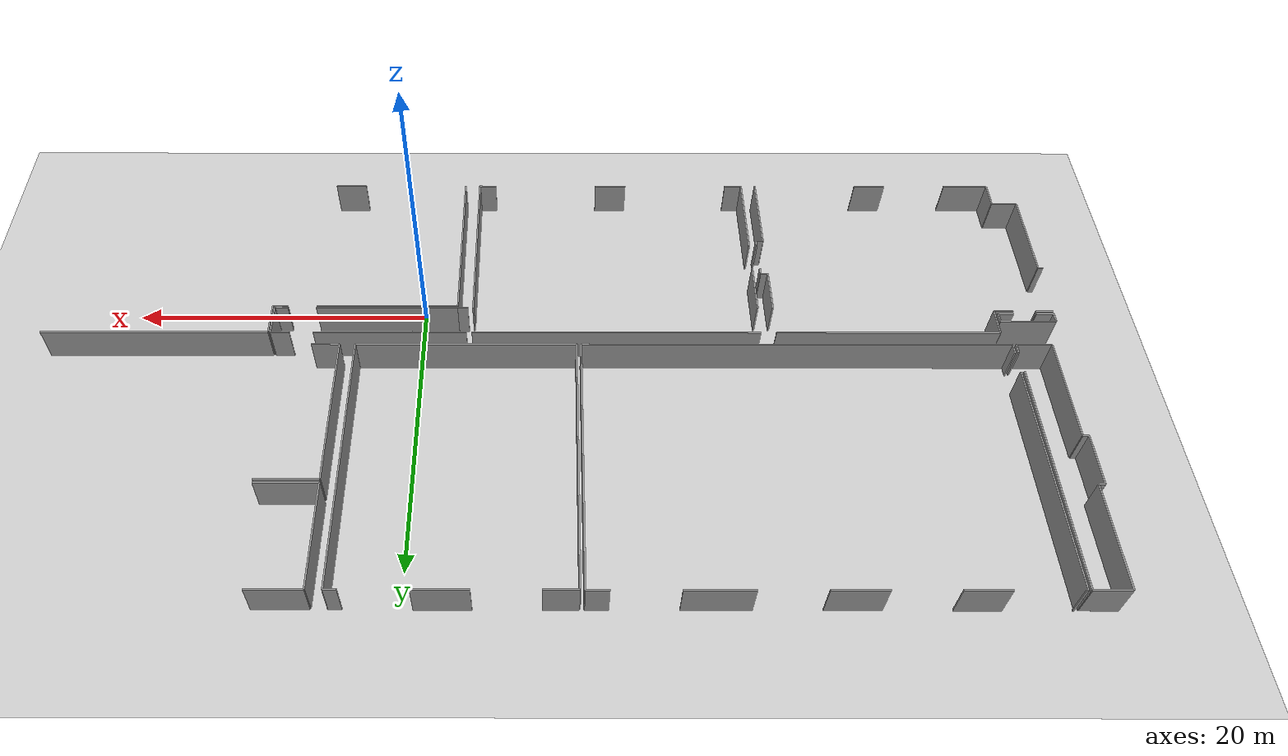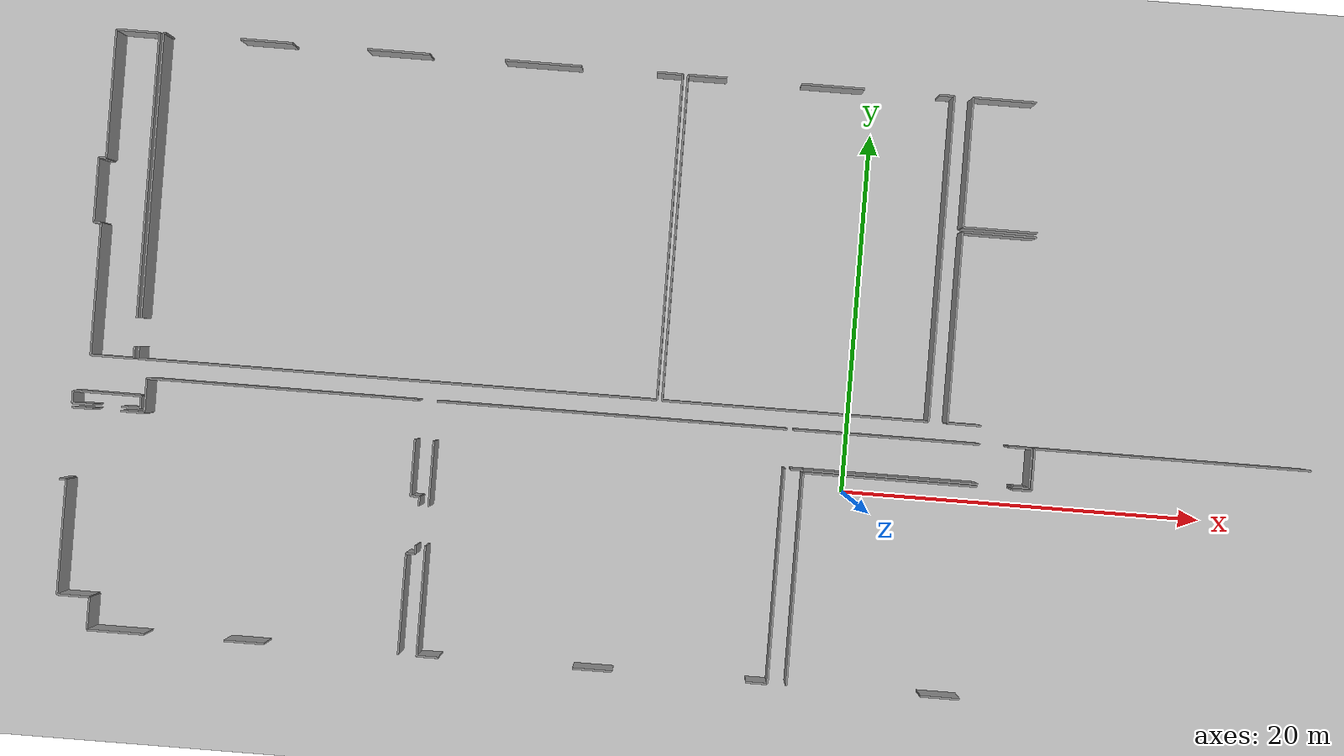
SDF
<sdf version="1.6">
 <world name="default">
  <model name="ground_plane">
   <static>1</static>
   <link name="link">
    <collision name="collision">
     <geometry><plane><normal>0 0 1</normal><size>100 100</size></plane></geometry>
     <surface><friction><ode><mu>100</mu><mu2>50</mu2></ode></friction></surface>
    </collision>
    <visual name="visual">
     <cast_shadows>0</cast_shadows>
     <geometry><plane><normal>0 0 1</normal><size>100 100</size></plane></geometry>
     <material>
      <script><uri>file://media/materials/scripts/gazebo.material</uri><name>Gazebo/Grey</name></script>
     </material>
    </visual>
   </link>
  </model>
  <model name="50010540">
   <static>1</static>
   <link name="Wall_66">
    <collision name="Wall_66_Collision">
     <geometry><box><size>6.36275238803 0.1 2.5</size></box></geometry>
     <pose>3.18137619402 0 1.25 0 0 0</pose>
    </collision>
    <visual name="Wall_66_Visual">
     <pose>3.18137619402 0 1.25 0 0 0</pose>
     <geometry><box><size>6.36275238803 0.1 2.5</size></box></geometry>
     <material>
      <script><uri>file://media/materials/scripts/gazebo.material</uri><name>Gazebo/Grey</name></script>
      <ambient>1 1 1 1</ambient>
     </material>
    </visual>
    <pose>19.6804514862 -31.7461406954 0 0 0 1.57079632679</pose>
   </link>
   <link name="Wall_67">
    <collision name="Wall_67_Collision">
     <geometry><box><size>0.357680794677 0.1 2.5</size></box></geometry>
     <pose>0.178840397338 0 1.25 0 0 0</pose>
    </collision>
    <visual name="Wall_67_Visual">
     <pose>0.178840397338 0 1.25 0 0 0</pose>
     <geometry><box><size>0.357680794677 0.1 2.5</size></box></geometry>
     <material>
      <script><uri>file://media/materials/scripts/gazebo.material</uri><name>Gazebo/Grey</name></script>
      <ambient>1 1 1 1</ambient>
     </material>
    </visual>
    <pose>19.6804514862 -25.3833883074 0 0 0 3.14159265359</pose>
   </link>
   <link name="Wall_71">
    <collision name="Wall_71_Collision">
     <geometry><box><size>1.1626532441 0.1 2.5</size></box></geometry>
     <pose>0.581326622052 0 1.25 0 0 0</pose>
    </collision>
    <visual name="Wall_71_Visual">
     <pose>0.581326622052 0 1.25 0 0 0</pose>
     <geometry><box><size>1.1626532441 0.1 2.5</size></box></geometry>
     <material>
      <script><uri>file://media/materials/scripts/gazebo.material</uri><name>Gazebo/Grey</name></script>
      <ambient>1 1 1 1</ambient>
     </material>
    </visual>
    <pose>19.6691389095 -21.3969125563 0 0 0 0.0</pose>
   </link>
   <link name="Wall_72">
    <collision name="Wall_72_Collision">
     <geometry><box><size>1.29103192307 0.1 2.5</size></box></geometry>
     <pose>0.645515961537 0 1.25 0 0 0</pose>
    </collision>
    <visual name="Wall_72_Visual">
     <pose>0.645515961537 0 1.25 0 0 0</pose>
     <geometry><box><size>1.29103192307 0.1 2.5</size></box></geometry>
     <material>
      <script><uri>file://media/materials/scripts/gazebo.material</uri><name>Gazebo/Grey</name></script>
      <ambient>1 1 1 1</ambient>
     </material>
    </visual>
    <pose>22.3846657388 -21.3969125563 0 0 0 0.0</pose>
   </link>
   <link name="Wall_73">
    <collision name="Wall_73_Collision">
     <geometry><box><size>1.90203817041 0.1 2.5</size></box></geometry>
     <pose>0.951019085207 0 1.25 0 0 0</pose>
    </collision>
    <visual name="Wall_73_Visual">
     <pose>0.951019085207 0 1.25 0 0 0</pose>
     <geometry><box><size>1.90203817041 0.1 2.5</size></box></geometry>
     <material>
      <script><uri>file://media/materials/scripts/gazebo.material</uri><name>Gazebo/Grey</name></script>
      <ambient>1 1 1 1</ambient>
     </material>
    </visual>
    <pose>23.6756976619 -21.3969125563 0 0 0 1.57079632679</pose>
   </link>
   <link name="Wall_74">
    <collision name="Wall_74_Collision">
     <geometry><box><size>14.9886556464 0.1 2.5</size></box></geometry>
     <pose>7.49432782322 0 1.25 0 0 0</pose>
    </collision>
    <visual name="Wall_74_Visual">
     <pose>7.49432782322 0 1.25 0 0 0</pose>
     <geometry><box><size>14.9886556464 0.1 2.5</size></box></geometry>
     <material>
      <script><uri>file://media/materials/scripts/gazebo.material</uri><name>Gazebo/Grey</name></script>
      <ambient>1 1 1 1</ambient>
     </material>
    </visual>
    <pose>23.6756976619 -19.4948743859 0 0 0 0.0</pose>
   </link>
   <link name="Wall_75">
    <collision name="Wall_75_Collision">
     <geometry><box><size>3.12595727913 0.1 2.5</size></box></geometry>
     <pose>1.56297863957 0 1.25 0 0 0</pose>
    </collision>
    <visual name="Wall_75_Visual">
     <pose>1.56297863957 0 1.25 0 0 0</pose>
     <geometry><box><size>3.12595727913 0.1 2.5</size></box></geometry>
     <material>
      <script><uri>file://media/materials/scripts/gazebo.material</uri><name>Gazebo/Grey</name></script>
      <ambient>1 1 1 1</ambient>
     </material>
    </visual>
    <pose>38.6643533083 -21.6699396874 0 0 0 -1.57079632679</pose>
   </link>
   <link name="Wall_76">
    <collision name="Wall_76_Collision">
     <geometry><box><size>0.493177499412 0.1 2.5</size></box></geometry>
     <pose>0.246588749706 0 1.25 0 0 0</pose>
    </collision>
    <visual name="Wall_76_Visual">
     <pose>0.246588749706 0 1.25 0 0 0</pose>
     <geometry><box><size>0.493177499412 0.1 2.5</size></box></geometry>
     <material>
      <script><uri>file://media/materials/scripts/gazebo.material</uri><name>Gazebo/Grey</name></script>
      <ambient>1 1 1 1</ambient>
     </material>
    </visual>
    <pose>38.6643533083 -24.7958969666 0 0 0 0.0</pose>
   </link>
   <link name="Wall_77">
    <collision name="Wall_77_Collision">
     <geometry><box><size>0.499532879559 0.1 2.5</size></box></geometry>
     <pose>0.24976643978 0 1.25 0 0 0</pose>
    </collision>
    <visual name="Wall_77_Visual">
     <pose>0.24976643978 0 1.25 0 0 0</pose>
     <geometry><box><size>0.499532879559 0.1 2.5</size></box></geometry>
     <material>
      <script><uri>file://media/materials/scripts/gazebo.material</uri><name>Gazebo/Grey</name></script>
      <ambient>1 1 1 1</ambient>
     </material>
    </visual>
    <pose>39.1575308077 -24.7958969666 0 0 0 -1.57079632679</pose>
   </link>
   <link name="Wall_78">
    <collision name="Wall_78_Collision">
     <geometry><box><size>0.468137301633 0.1 2.5</size></box></geometry>
     <pose>0.234068650816 0 1.25 0 0 0</pose>
    </collision>
    <visual name="Wall_78_Visual">
     <pose>0.234068650816 0 1.25 0 0 0</pose>
     <geometry><box><size>0.468137301633 0.1 2.5</size></box></geometry>
     <material>
      <script><uri>file://media/materials/scripts/gazebo.material</uri><name>Gazebo/Grey</name></script>
      <ambient>1 1 1 1</ambient>
     </material>
    </visual>
    <pose>39.1575308077 -27.4947726998 0 0 0 -1.57079632679</pose>
   </link>
   <link name="Wall_79">
    <collision name="Wall_79_Collision">
     <geometry><box><size>0.490126916942 0.1 2.5</size></box></geometry>
     <pose>0.245063458471 0 1.25 0 0 0</pose>
    </collision>
    <visual name="Wall_79_Visual">
     <pose>0.245063458471 0 1.25 0 0 0</pose>
     <geometry><box><size>0.490126916942 0.1 2.5</size></box></geometry>
     <material>
      <script><uri>file://media/materials/scripts/gazebo.material</uri><name>Gazebo/Grey</name></script>
      <ambient>1 1 1 1</ambient>
     </material>
    </visual>
    <pose>39.1575308077 -27.9629100015 0 0 0 3.14159265359</pose>
   </link>
   <link name="Wall_80">
    <collision name="Wall_80_Collision">
     <geometry><box><size>5.59705618792 0.1 2.5</size></box></geometry>
     <pose>2.79852809396 0 1.25 0 0 0</pose>
    </collision>
    <visual name="Wall_80_Visual">
     <pose>2.79852809396 0 1.25 0 0 0</pose>
     <geometry><box><size>5.59705618792 0.1 2.5</size></box></geometry>
     <material>
      <script><uri>file://media/materials/scripts/gazebo.material</uri><name>Gazebo/Grey</name></script>
      <ambient>1 1 1 1</ambient>
     </material>
    </visual>
    <pose>38.6674038908 -27.9629100015 0 0 0 -1.57079632679</pose>
   </link>
   <link name="Wall_81">
    <collision name="Wall_81_Collision">
     <geometry><box><size>2.21459576605 0.1 2.5</size></box></geometry>
     <pose>1.10729788302 0 1.25 0 0 0</pose>
    </collision>
    <visual name="Wall_81_Visual">
     <pose>1.10729788302 0 1.25 0 0 0</pose>
     <geometry><box><size>2.21459576605 0.1 2.5</size></box></geometry>
     <material>
      <script><uri>file://media/materials/scripts/gazebo.material</uri><name>Gazebo/Grey</name></script>
      <ambient>1 1 1 1</ambient>
     </material>
    </visual>
    <pose>31.280164223 -33.5599661894 0 0 0 3.14159265359</pose>
   </link>
   <link name="Wall_82">
    <collision name="Wall_82_Collision">
     <geometry><box><size>3.16205583837 0.1 2.5</size></box></geometry>
     <pose>1.58102791918 0 1.25 0 0 0</pose>
    </collision>
    <visual name="Wall_82_Visual">
     <pose>1.58102791918 0 1.25 0 0 0</pose>
     <geometry><box><size>3.16205583837 0.1 2.5</size></box></geometry>
     <material>
      <script><uri>file://media/materials/scripts/gazebo.material</uri><name>Gazebo/Grey</name></script>
      <ambient>1 1 1 1</ambient>
     </material>
    </visual>
    <pose>24.6381564313 -33.5599661894 0 0 0 3.14159265359</pose>
   </link>
   <link name="Wall_83">
    <collision name="Wall_83_Collision">
     <geometry><box><size>1.80569060738 0.1 2.5</size></box></geometry>
     <pose>0.902845303692 0 1.25 0 0 0</pose>
    </collision>
    <visual name="Wall_83_Visual">
     <pose>0.902845303692 0 1.25 0 0 0</pose>
     <geometry><box><size>1.80569060738 0.1 2.5</size></box></geometry>
     <material>
      <script><uri>file://media/materials/scripts/gazebo.material</uri><name>Gazebo/Grey</name></script>
      <ambient>1 1 1 1</ambient>
     </material>
    </visual>
    <pose>21.476100593 -33.5599661894 0 0 0 1.57079632679</pose>
   </link>
   <link name="Wall_84">
    <collision name="Wall_84_Collision">
     <geometry><box><size>1.79566753353 0.1 2.5</size></box></geometry>
     <pose>0.897833766763 0 1.25 0 0 0</pose>
    </collision>
    <visual name="Wall_84_Visual">
     <pose>0.897833766763 0 1.25 0 0 0</pose>
     <geometry><box><size>1.79566753353 0.1 2.5</size></box></geometry>
     <material>
      <script><uri>file://media/materials/scripts/gazebo.material</uri><name>Gazebo/Grey</name></script>
      <ambient>1 1 1 1</ambient>
     </material>
    </visual>
    <pose>21.476100593 -31.754275582 0 0 0 3.13706235259</pose>
   </link>
   <link name="Wall_85">
    <collision name="Wall_85_Collision">
     <geometry><box><size>0.676847985662 0.1 2.5</size></box></geometry>
     <pose>0.338423992831 0 1.25 0 0 0</pose>
    </collision>
    <visual name="Wall_85_Visual">
     <pose>0.338423992831 0 1.25 0 0 0</pose>
     <geometry><box><size>0.676847985662 0.1 2.5</size></box></geometry>
     <material>
      <script><uri>file://media/materials/scripts/gazebo.material</uri><name>Gazebo/Grey</name></script>
      <ambient>1 1 1 1</ambient>
     </material>
    </visual>
    <pose>19.6804514862 -21.1688815166 0 0 0 1.57079632679</pose>
   </link>
   <link name="Wall_86">
    <collision name="Wall_86_Collision">
     <geometry><box><size>3.75908024939 0.1 2.5</size></box></geometry>
     <pose>1.87954012469 0 1.25 0 0 0</pose>
    </collision>
    <visual name="Wall_86_Visual">
     <pose>1.87954012469 0 1.25 0 0 0</pose>
     <geometry><box><size>3.75908024939 0.1 2.5</size></box></geometry>
     <material>
      <script><uri>file://media/materials/scripts/gazebo.material</uri><name>Gazebo/Grey</name></script>
      <ambient>1 1 1 1</ambient>
     </material>
    </visual>
    <pose>19.6804514862 -20.492033531 0 0 0 0.0</pose>
   </link>
   <link name="Wall_87">
    <collision name="Wall_87_Collision">
     <geometry><box><size>0.67201789675 0.1 2.5</size></box></geometry>
     <pose>0.336008948375 0 1.25 0 0 0</pose>
    </collision>
    <visual name="Wall_87_Visual">
     <pose>0.336008948375 0 1.25 0 0 0</pose>
     <geometry><box><size>0.67201789675 0.1 2.5</size></box></geometry>
     <material>
      <script><uri>file://media/materials/scripts/gazebo.material</uri><name>Gazebo/Grey</name></script>
      <ambient>1 1 1 1</ambient>
     </material>
    </visual>
    <pose>23.4395317356 -20.492033531 0 0 0 -1.57079632679</pose>
   </link>
   <link name="Wall_88">
    <collision name="Wall_88_Collision">
     <geometry><box><size>1.04482449618 0.1 2.5</size></box></geometry>
     <pose>0.522412248089 0 1.25 0 0 0</pose>
    </collision>
    <visual name="Wall_88_Visual">
     <pose>0.522412248089 0 1.25 0 0 0</pose>
     <geometry><box><size>1.04482449618 0.1 2.5</size></box></geometry>
     <material>
      <script><uri>file://media/materials/scripts/gazebo.material</uri><name>Gazebo/Grey</name></script>
      <ambient>1 1 1 1</ambient>
     </material>
    </visual>
    <pose>23.4395317356 -21.1640514277 0 0 0 3.14159265359</pose>
   </link>
   <link name="Wall_89">
    <collision name="Wall_89_Collision">
     <geometry><box><size>1.16228195753 0.1 2.5</size></box></geometry>
     <pose>0.581140978763 0 1.25 0 0 0</pose>
    </collision>
    <visual name="Wall_89_Visual">
     <pose>0.581140978763 0 1.25 0 0 0</pose>
     <geometry><box><size>1.16228195753 0.1 2.5</size></box></geometry>
     <material>
      <script><uri>file://media/materials/scripts/gazebo.material</uri><name>Gazebo/Grey</name></script>
      <ambient>1 1 1 1</ambient>
     </material>
    </visual>
    <pose>20.8427234075 -21.1640514277 0 0 0 -3.13743694698</pose>
   </link>
   <link name="Wall_90">
    <collision name="Wall_90_Collision">
     <geometry><box><size>6.07879400306 0.1 2.5</size></box></geometry>
     <pose>3.03939700153 0 1.25 0 0 0</pose>
    </collision>
    <visual name="Wall_90_Visual">
     <pose>3.03939700153 0 1.25 0 0 0</pose>
     <geometry><box><size>6.07879400306 0.1 2.5</size></box></geometry>
     <material>
      <script><uri>file://media/materials/scripts/gazebo.material</uri><name>Gazebo/Grey</name></script>
      <ambient>1 1 1 1</ambient>
     </material>
    </visual>
    <pose>39.6977381202 -33.5569156069 0 0 0 1.57079632679</pose>
   </link>
   <link name="Wall_91">
    <collision name="Wall_91_Collision">
     <geometry><box><size>3.62332932944 0.1 2.5</size></box></geometry>
     <pose>1.81166466472 0 1.25 0 0 0</pose>
    </collision>
    <visual name="Wall_91_Visual">
     <pose>1.81166466472 0 1.25 0 0 0</pose>
     <geometry><box><size>3.62332932944 0.1 2.5</size></box></geometry>
     <material>
      <script><uri>file://media/materials/scripts/gazebo.material</uri><name>Gazebo/Grey</name></script>
      <ambient>1 1 1 1</ambient>
     </material>
    </visual>
    <pose>39.6977381202 -25.2918708333 0 0 0 1.57079632679</pose>
   </link>
   <link name="Wall_92">
    <collision name="Wall_92_Collision">
     <geometry><box><size>19.3772998532 0.1 2.5</size></box></geometry>
     <pose>9.6886499266 0 1.25 0 0 0</pose>
    </collision>
    <visual name="Wall_92_Visual">
     <pose>9.6886499266 0 1.25 0 0 0</pose>
     <geometry><box><size>19.3772998532 0.1 2.5</size></box></geometry>
     <material>
      <script><uri>file://media/materials/scripts/gazebo.material</uri><name>Gazebo/Grey</name></script>
      <ambient>1 1 1 1</ambient>
     </material>
    </visual>
    <pose>39.6977381202 -19.4876292525 0 0 0 0.0</pose>
   </link>
   <link name="Wall_93">
    <collision name="Wall_93_Collision">
     <geometry><box><size>11.9026101546 0.1 2.5</size></box></geometry>
     <pose>5.95130507731 0 1.25 0 0 0</pose>
    </collision>
    <visual name="Wall_93_Visual">
     <pose>5.95130507731 0 1.25 0 0 0</pose>
     <geometry><box><size>11.9026101546 0.1 2.5</size></box></geometry>
     <material>
      <script><uri>file://media/materials/scripts/gazebo.material</uri><name>Gazebo/Grey</name></script>
      <ambient>1 1 1 1</ambient>
     </material>
    </visual>
    <pose>59.0750379734 -21.6529072686 0 0 0 -1.57079632679</pose>
   </link>
   <link name="Wall_94">
    <collision name="Wall_94_Collision">
     <geometry><box><size>1.19163377757 0.1 2.5</size></box></geometry>
     <pose>0.595816888787 0 1.25 0 0 0</pose>
    </collision>
    <visual name="Wall_94_Visual">
     <pose>0.595816888787 0 1.25 0 0 0</pose>
     <geometry><box><size>1.19163377757 0.1 2.5</size></box></geometry>
     <material>
      <script><uri>file://media/materials/scripts/gazebo.material</uri><name>Gazebo/Grey</name></script>
      <ambient>1 1 1 1</ambient>
     </material>
    </visual>
    <pose>59.0750379734 -33.5555174233 0 0 0 3.14159265359</pose>
   </link>
   <link name="Wall_95">
    <collision name="Wall_95_Collision">
     <geometry><box><size>2.20455426541 0.1 2.5</size></box></geometry>
     <pose>1.10227713271 0 1.25 0 0 0</pose>
    </collision>
    <visual name="Wall_95_Visual">
     <pose>1.10227713271 0 1.25 0 0 0</pose>
     <geometry><box><size>2.20455426541 0.1 2.5</size></box></geometry>
     <material>
      <script><uri>file://media/materials/scripts/gazebo.material</uri><name>Gazebo/Grey</name></script>
      <ambient>1 1 1 1</ambient>
     </material>
    </visual>
    <pose>50.5023928006 -33.5555174233 0 0 0 3.14159265359</pose>
   </link>
   <link name="Wall_96">
    <collision name="Wall_96_Collision">
     <geometry><box><size>1.20498088707 0.1 2.5</size></box></geometry>
     <pose>0.602490443533 0 1.25 0 0 0</pose>
    </collision>
    <visual name="Wall_96_Visual">
     <pose>0.602490443533 0 1.25 0 0 0</pose>
     <geometry><box><size>1.20498088707 0.1 2.5</size></box></geometry>
     <material>
      <script><uri>file://media/materials/scripts/gazebo.material</uri><name>Gazebo/Grey</name></script>
      <ambient>1 1 1 1</ambient>
     </material>
    </visual>
    <pose>40.9027181961 -33.5555174233 0 0 0 -3.14043231656</pose>
   </link>
   <link name="Wall_97">
    <collision name="Wall_97_Collision">
     <geometry><box><size>0.702396613853 0.1 2.5</size></box></geometry>
     <pose>0.351198306927 0 1.25 0 0 0</pose>
    </collision>
    <visual name="Wall_97_Visual">
     <pose>0.351198306927 0 1.25 0 0 0</pose>
     <geometry><box><size>0.702396613853 0.1 2.5</size></box></geometry>
     <material>
      <script><uri>file://media/materials/scripts/gazebo.material</uri><name>Gazebo/Grey</name></script>
      <ambient>1 1 1 1</ambient>
     </material>
    </visual>
    <pose>60.1349882743 -21.6679059658 0 0 0 3.14159265359</pose>
   </link>
   <link name="Wall_98">
    <collision name="Wall_98_Collision">
     <geometry><box><size>10.2783020966 0.1 2.5</size></box></geometry>
     <pose>5.13915104832 0 1.25 0 0 0</pose>
    </collision>
    <visual name="Wall_98_Visual">
     <pose>5.13915104832 0 1.25 0 0 0</pose>
     <geometry><box><size>10.2783020966 0.1 2.5</size></box></geometry>
     <material>
      <script><uri>file://media/materials/scripts/gazebo.material</uri><name>Gazebo/Grey</name></script>
      <ambient>1 1 1 1</ambient>
     </material>
    </visual>
    <pose>59.4325916605 -19.4844515625 0 0 0 0.0</pose>
   </link>
   <link name="Wall_99">
    <collision name="Wall_99_Collision">
     <geometry><box><size>1.28454943532 0.1 2.5</size></box></geometry>
     <pose>0.642274717662 0 1.25 0 0 0</pose>
    </collision>
    <visual name="Wall_99_Visual">
     <pose>0.642274717662 0 1.25 0 0 0</pose>
     <geometry><box><size>1.28454943532 0.1 2.5</size></box></geometry>
     <material>
      <script><uri>file://media/materials/scripts/gazebo.material</uri><name>Gazebo/Grey</name></script>
      <ambient>1 1 1 1</ambient>
     </material>
    </visual>
    <pose>71.3002472243 -19.4844515625 0 0 0 0.0</pose>
   </link>
   <link name="Wall_100">
    <collision name="Wall_100_Collision">
     <geometry><box><size>2.18459837175 0.1 2.5</size></box></geometry>
     <pose>1.09229918588 0 1.25 0 0 0</pose>
    </collision>
    <visual name="Wall_100_Visual">
     <pose>1.09229918588 0 1.25 0 0 0</pose>
     <geometry><box><size>2.18459837175 0.1 2.5</size></box></geometry>
     <material>
      <script><uri>file://media/materials/scripts/gazebo.material</uri><name>Gazebo/Grey</name></script>
      <ambient>1 1 1 1</ambient>
     </material>
    </visual>
    <pose>72.5847966596 -19.4844515625 0 0 0 -1.57079632679</pose>
   </link>
   <link name="Wall_101">
    <collision name="Wall_101_Collision">
     <geometry><box><size>0.903735056912 0.1 2.5</size></box></geometry>
     <pose>0.451867528456 0 1.25 0 0 0</pose>
    </collision>
    <visual name="Wall_101_Visual">
     <pose>0.451867528456 0 1.25 0 0 0</pose>
     <geometry><box><size>0.903735056912 0.1 2.5</size></box></geometry>
     <material>
      <script><uri>file://media/materials/scripts/gazebo.material</uri><name>Gazebo/Grey</name></script>
      <ambient>1 1 1 1</ambient>
     </material>
    </visual>
    <pose>72.5847966596 -21.6690499342 0 0 0 3.14159265359</pose>
   </link>
   <link name="Wall_102">
    <collision name="Wall_102_Collision">
     <geometry><box><size>9.62852809836 0.1 2.5</size></box></geometry>
     <pose>4.81426404918 0 1.25 0 0 0</pose>
    </collision>
    <visual name="Wall_102_Visual">
     <pose>4.81426404918 0 1.25 0 0 0</pose>
     <geometry><box><size>9.62852809836 0.1 2.5</size></box></geometry>
     <material>
      <script><uri>file://media/materials/scripts/gazebo.material</uri><name>Gazebo/Grey</name></script>
      <ambient>1 1 1 1</ambient>
     </material>
    </visual>
    <pose>69.7635163047 -21.6690499342 0 0 0 3.14147384328</pose>
   </link>
   <link name="Wall_103">
    <collision name="Wall_103_Collision">
     <geometry><box><size>7.31313593523 0.1 2.5</size></box></geometry>
     <pose>3.65656796761 0 1.25 0 0 0</pose>
    </collision>
    <visual name="Wall_103_Visual">
     <pose>3.65656796761 0 1.25 0 0 0</pose>
     <geometry><box><size>7.31313593523 0.1 2.5</size></box></geometry>
     <material>
      <script><uri>file://media/materials/scripts/gazebo.material</uri><name>Gazebo/Grey</name></script>
      <ambient>1 1 1 1</ambient>
     </material>
    </visual>
    <pose>20.4790685555 -18.4579305611 0 0 0 1.57079632679</pose>
   </link>
   <link name="Wall_104">
    <collision name="Wall_104_Collision">
     <geometry><box><size>0.405219038177 0.1 2.5</size></box></geometry>
     <pose>0.202609519088 0 1.25 0 0 0</pose>
    </collision>
    <visual name="Wall_104_Visual">
     <pose>0.202609519088 0 1.25 0 0 0</pose>
     <geometry><box><size>0.405219038177 0.1 2.5</size></box></geometry>
     <material>
      <script><uri>file://media/materials/scripts/gazebo.material</uri><name>Gazebo/Grey</name></script>
      <ambient>1 1 1 1</ambient>
     </material>
    </visual>
    <pose>20.4790685555 -11.1447946259 0 0 0 3.14159265359</pose>
   </link>
   <link name="Wall_105">
    <collision name="Wall_105_Collision">
     <geometry><box><size>3.57502844033 0.1 2.5</size></box></geometry>
     <pose>1.78751422016 0 1.25 0 0 0</pose>
    </collision>
    <visual name="Wall_105_Visual">
     <pose>1.78751422016 0 1.25 0 0 0</pose>
     <geometry><box><size>3.57502844033 0.1 2.5</size></box></geometry>
     <material>
      <script><uri>file://media/materials/scripts/gazebo.material</uri><name>Gazebo/Grey</name></script>
      <ambient>1 1 1 1</ambient>
     </material>
    </visual>
    <pose>20.0738495173 -11.1447946259 0 0 0 1.57079632679</pose>
   </link>
   <link name="Wall_106">
    <collision name="Wall_106_Collision">
     <geometry><box><size>0.405473253383 0.1 2.5</size></box></geometry>
     <pose>0.202736626691 0 1.25 0 0 0</pose>
    </collision>
    <visual name="Wall_106_Visual">
     <pose>0.202736626691 0 1.25 0 0 0</pose>
     <geometry><box><size>0.405473253383 0.1 2.5</size></box></geometry>
     <material>
      <script><uri>file://media/materials/scripts/gazebo.material</uri><name>Gazebo/Grey</name></script>
      <ambient>1 1 1 1</ambient>
     </material>
    </visual>
    <pose>20.0738495173 -7.56976618556 0 0 0 0.0</pose>
   </link>
   <link name="Wall_107">
    <collision name="Wall_107_Collision">
     <geometry><box><size>7.10201020674 0.1 2.5</size></box></geometry>
     <pose>3.55100510337 0 1.25 0 0 0</pose>
    </collision>
    <visual name="Wall_107_Visual">
     <pose>3.55100510337 0 1.25 0 0 0</pose>
     <geometry><box><size>7.10201020674 0.1 2.5</size></box></geometry>
     <material>
      <script><uri>file://media/materials/scripts/gazebo.material</uri><name>Gazebo/Grey</name></script>
      <ambient>1 1 1 1</ambient>
     </material>
    </visual>
    <pose>20.4793227707 -7.56976618556 0 0 0 1.57079632679</pose>
   </link>
   <link name="Wall_108">
    <collision name="Wall_108_Collision">
     <geometry><box><size>2.37970854227 0.1 2.5</size></box></geometry>
     <pose>1.18985427113 0 1.25 0 0 0</pose>
    </collision>
    <visual name="Wall_108_Visual">
     <pose>1.18985427113 0 1.25 0 0 0</pose>
     <geometry><box><size>2.37970854227 0.1 2.5</size></box></geometry>
     <material>
      <script><uri>file://media/materials/scripts/gazebo.material</uri><name>Gazebo/Grey</name></script>
      <ambient>1 1 1 1</ambient>
     </material>
    </visual>
    <pose>20.4793227707 -0.467755978824 0 0 0 0.0</pose>
   </link>
   <link name="Wall_109">
    <collision name="Wall_109_Collision">
     <geometry><box><size>15.7346501681 0.1 2.5</size></box></geometry>
     <pose>7.86732508405 0 1.25 0 0 0</pose>
    </collision>
    <visual name="Wall_109_Visual">
     <pose>7.86732508405 0 1.25 0 0 0</pose>
     <geometry><box><size>15.7346501681 0.1 2.5</size></box></geometry>
     <material>
      <script><uri>file://media/materials/scripts/gazebo.material</uri><name>Gazebo/Grey</name></script>
      <ambient>1 1 1 1</ambient>
     </material>
    </visual>
    <pose>22.859031313 -0.467755978824 0 0 0 -1.57079632679</pose>
   </link>
   <link name="Wall_110">
    <collision name="Wall_110_Collision">
     <geometry><box><size>0.679008814912 0.1 2.5</size></box></geometry>
     <pose>0.339504407456 0 1.25 0 0 0</pose>
    </collision>
    <visual name="Wall_110_Visual">
     <pose>0.339504407456 0 1.25 0 0 0</pose>
     <geometry><box><size>0.679008814912 0.1 2.5</size></box></geometry>
     <material>
      <script><uri>file://media/materials/scripts/gazebo.material</uri><name>Gazebo/Grey</name></script>
      <ambient>1 1 1 1</ambient>
     </material>
    </visual>
    <pose>22.859031313 -17.7777777778 0 0 0 -1.57079632679</pose>
   </link>
   <link name="Wall_111">
    <collision name="Wall_111_Collision">
     <geometry><box><size>2.37996303241 0.1 2.5</size></box></geometry>
     <pose>1.1899815162 0 1.25 0 0 0</pose>
    </collision>
    <visual name="Wall_111_Visual">
     <pose>1.1899815162 0 1.25 0 0 0</pose>
     <geometry><box><size>2.37996303241 0.1 2.5</size></box></geometry>
     <material>
      <script><uri>file://media/materials/scripts/gazebo.material</uri><name>Gazebo/Grey</name></script>
      <ambient>1 1 1 1</ambient>
     </material>
    </visual>
    <pose>22.859031313 -18.4567865927 0 0 0 -3.1411119871</pose>
   </link>
   <link name="Wall_112">
    <collision name="Wall_112_Collision">
     <geometry><box><size>0.125709419309 0.1 2.5</size></box></geometry>
     <pose>0.0628547096545 0 1.25 0 0 0</pose>
    </collision>
    <visual name="Wall_112_Visual">
     <pose>0.0628547096545 0 1.25 0 0 0</pose>
     <geometry><box><size>0.125709419309 0.1 2.5</size></box></geometry>
     <material>
      <script><uri>file://media/materials/scripts/gazebo.material</uri><name>Gazebo/Grey</name></script>
      <ambient>1 1 1 1</ambient>
     </material>
    </visual>
    <pose>23.0803256497 -0.452630174074 0 0 0 0.0</pose>
   </link>
   <link name="Wall_113">
    <collision name="Wall_113_Collision">
     <geometry><box><size>2.88102092827 0.1 2.5</size></box></geometry>
     <pose>1.44051046413 0 1.25 0 0 0</pose>
    </collision>
    <visual name="Wall_113_Visual">
     <pose>1.44051046413 0 1.25 0 0 0</pose>
     <geometry><box><size>2.88102092827 0.1 2.5</size></box></geometry>
     <material>
      <script><uri>file://media/materials/scripts/gazebo.material</uri><name>Gazebo/Grey</name></script>
      <ambient>1 1 1 1</ambient>
     </material>
    </visual>
    <pose>27.3166949481 -0.452630174074 0 0 0 0.0</pose>
   </link>
   <link name="Wall_114">
    <collision name="Wall_114_Collision">
     <geometry><box><size>3.47652004805 0.1 2.5</size></box></geometry>
     <pose>1.73826002402 0 1.25 0 0 0</pose>
    </collision>
    <visual name="Wall_114_Visual">
     <pose>1.73826002402 0 1.25 0 0 0</pose>
     <geometry><box><size>3.47652004805 0.1 2.5</size></box></geometry>
     <material>
      <script><uri>file://media/materials/scripts/gazebo.material</uri><name>Gazebo/Grey</name></script>
      <ambient>1 1 1 1</ambient>
     </material>
    </visual>
    <pose>34.3205780854 -0.452630174074 0 0 0 0.0</pose>
   </link>
   <link name="Wall_115">
    <collision name="Wall_115_Collision">
     <geometry><box><size>4.25352882483 0.1 2.5</size></box></geometry>
     <pose>2.12676441241 0 1.25 0 0 0</pose>
    </collision>
    <visual name="Wall_115_Visual">
     <pose>2.12676441241 0 1.25 0 0 0</pose>
     <geometry><box><size>4.25352882483 0.1 2.5</size></box></geometry>
     <material>
      <script><uri>file://media/materials/scripts/gazebo.material</uri><name>Gazebo/Grey</name></script>
      <ambient>1 1 1 1</ambient>
     </material>
    </visual>
    <pose>41.9338150711 -0.452630174074 0 0 0 0.0</pose>
   </link>
   <link name="Wall_116">
    <collision name="Wall_116_Collision">
     <geometry><box><size>1.41610580437 0.1 2.5</size></box></geometry>
     <pose>0.708052902184 0 1.25 0 0 0</pose>
    </collision>
    <visual name="Wall_116_Visual">
     <pose>0.708052902184 0 1.25 0 0 0</pose>
     <geometry><box><size>1.41610580437 0.1 2.5</size></box></geometry>
     <material>
      <script><uri>file://media/materials/scripts/gazebo.material</uri><name>Gazebo/Grey</name></script>
      <ambient>1 1 1 1</ambient>
     </material>
    </visual>
    <pose>50.3502449999 -0.452630174074 0 0 0 0.0</pose>
   </link>
   <link name="Wall_117">
    <collision name="Wall_117_Collision">
     <geometry><box><size>17.9990721145 0.1 2.5</size></box></geometry>
     <pose>8.99953605725 0 1.25 0 0 0</pose>
    </collision>
    <visual name="Wall_117_Visual">
     <pose>8.99953605725 0 1.25 0 0 0</pose>
     <geometry><box><size>17.9990721145 0.1 2.5</size></box></geometry>
     <material>
      <script><uri>file://media/materials/scripts/gazebo.material</uri><name>Gazebo/Grey</name></script>
      <ambient>1 1 1 1</ambient>
     </material>
    </visual>
    <pose>51.7663508043 -0.452630174074 0 0 0 -1.57079632679</pose>
   </link>
   <link name="Wall_118">
    <collision name="Wall_118_Collision">
     <geometry><box><size>28.6719162107 0.1 2.5</size></box></geometry>
     <pose>14.3359581053 0 1.25 0 0 0</pose>
    </collision>
    <visual name="Wall_118_Visual">
     <pose>14.3359581053 0 1.25 0 0 0</pose>
     <geometry><box><size>28.6719162107 0.1 2.5</size></box></geometry>
     <material>
      <script><uri>file://media/materials/scripts/gazebo.material</uri><name>Gazebo/Grey</name></script>
      <ambient>1 1 1 1</ambient>
     </material>
    </visual>
    <pose>51.7663508043 -18.4517022886 0 0 0 3.14159265359</pose>
   </link>
   <link name="Wall_119">
    <collision name="Wall_119_Collision">
     <geometry><box><size>0.680406998545 0.1 2.5</size></box></geometry>
     <pose>0.340203499272 0 1.25 0 0 0</pose>
    </collision>
    <visual name="Wall_119_Visual">
     <pose>0.340203499272 0 1.25 0 0 0</pose>
     <geometry><box><size>0.680406998545 0.1 2.5</size></box></geometry>
     <material>
      <script><uri>file://media/materials/scripts/gazebo.material</uri><name>Gazebo/Grey</name></script>
      <ambient>1 1 1 1</ambient>
     </material>
    </visual>
    <pose>23.0944345936 -18.4517022886 0 0 0 1.57079632679</pose>
   </link>
   <link name="Wall_120">
    <collision name="Wall_120_Collision">
     <geometry><box><size>15.7407576562 0.1 2.5</size></box></geometry>
     <pose>7.8703788281 0 1.25 0 0 0</pose>
    </collision>
    <visual name="Wall_120_Visual">
     <pose>7.8703788281 0 1.25 0 0 0</pose>
     <geometry><box><size>15.7407576562 0.1 2.5</size></box></geometry>
     <material>
      <script><uri>file://media/materials/scripts/gazebo.material</uri><name>Gazebo/Grey</name></script>
      <ambient>1 1 1 1</ambient>
     </material>
    </visual>
    <pose>23.0944345936 -16.1933815071 0 0 0 1.57169265886</pose>
   </link>
   <link name="Wall_121">
    <collision name="Wall_121_Collision">
     <geometry><box><size>18.0013600514 0.1 2.5</size></box></geometry>
     <pose>9.00068002568 0 1.25 0 0 0</pose>
    </collision>
    <visual name="Wall_121_Visual">
     <pose>9.00068002568 0 1.25 0 0 0</pose>
     <geometry><box><size>18.0013600514 0.1 2.5</size></box></geometry>
     <material>
      <script><uri>file://media/materials/scripts/gazebo.material</uri><name>Gazebo/Grey</name></script>
      <ambient>1 1 1 1</ambient>
     </material>
    </visual>
    <pose>52.0564103542 -18.4626335424 0 0 0 1.57079632679</pose>
   </link>
   <link name="Wall_122">
    <collision name="Wall_122_Collision">
     <geometry><box><size>2.16756595296 0.1 2.5</size></box></geometry>
     <pose>1.08378297648 0 1.25 0 0 0</pose>
    </collision>
    <visual name="Wall_122_Visual">
     <pose>1.08378297648 0 1.25 0 0 0</pose>
     <geometry><box><size>2.16756595296 0.1 2.5</size></box></geometry>
     <material>
      <script><uri>file://media/materials/scripts/gazebo.material</uri><name>Gazebo/Grey</name></script>
      <ambient>1 1 1 1</ambient>
     </material>
    </visual>
    <pose>52.0564103542 -0.461273491074 0 0 0 0.0</pose>
   </link>
   <link name="Wall_123">
    <collision name="Wall_123_Collision">
     <geometry><box><size>3.47563029483 0.1 2.5</size></box></geometry>
     <pose>1.73781514741 0 1.25 0 0 0</pose>
    </collision>
    <visual name="Wall_123_Visual">
     <pose>1.73781514741 0 1.25 0 0 0</pose>
     <geometry><box><size>3.47563029483 0.1 2.5</size></box></geometry>
     <material>
      <script><uri>file://media/materials/scripts/gazebo.material</uri><name>Gazebo/Grey</name></script>
      <ambient>1 1 1 1</ambient>
     </material>
    </visual>
    <pose>58.348490915 -0.461273491074 0 0 0 0.0</pose>
   </link>
   <link name="Wall_124">
    <collision name="Wall_124_Collision">
     <geometry><box><size>0.81806453253 0.1 2.5</size></box></geometry>
     <pose>0.409032266265 0 1.25 0 0 0</pose>
    </collision>
    <visual name="Wall_124_Visual">
     <pose>0.409032266265 0 1.25 0 0 0</pose>
     <geometry><box><size>0.81806453253 0.1 2.5</size></box></geometry>
     <material>
      <script><uri>file://media/materials/scripts/gazebo.material</uri><name>Gazebo/Grey</name></script>
      <ambient>1 1 1 1</ambient>
     </material>
    </visual>
    <pose>65.9617279008 -0.461273491074 0 0 0 0.0</pose>
   </link>
   <link name="Wall_125">
    <collision name="Wall_125_Collision">
     <geometry><box><size>17.995385994 0.1 2.5</size></box></geometry>
     <pose>8.99769299701 0 1.25 0 0 0</pose>
    </collision>
    <visual name="Wall_125_Visual">
     <pose>8.99769299701 0 1.25 0 0 0</pose>
     <geometry><box><size>17.995385994 0.1 2.5</size></box></geometry>
     <material>
      <script><uri>file://media/materials/scripts/gazebo.material</uri><name>Gazebo/Grey</name></script>
      <ambient>1 1 1 1</ambient>
     </material>
    </visual>
    <pose>66.7797924333 -0.461273491074 0 0 0 -1.57079632679</pose>
   </link>
   <link name="Wall_126">
    <collision name="Wall_126_Collision">
     <geometry><box><size>14.7233832911 0.1 2.5</size></box></geometry>
     <pose>7.36169164555 0 1.25 0 0 0</pose>
    </collision>
    <visual name="Wall_126_Visual">
     <pose>7.36169164555 0 1.25 0 0 0</pose>
     <geometry><box><size>14.7233832911 0.1 2.5</size></box></geometry>
     <material>
      <script><uri>file://media/materials/scripts/gazebo.material</uri><name>Gazebo/Grey</name></script>
      <ambient>1 1 1 1</ambient>
     </material>
    </visual>
    <pose>66.7797924333 -18.4566594851 0 0 0 -3.14118690055</pose>
   </link>
   <link name="Wall_127">
    <collision name="Wall_127_Collision">
     <geometry><box><size>7.16836037548 0.1 2.5</size></box></geometry>
     <pose>3.58418018774 0 1.25 0 0 0</pose>
    </collision>
    <visual name="Wall_127_Visual">
     <pose>3.58418018774 0 1.25 0 0 0</pose>
     <geometry><box><size>7.16836037548 0.1 2.5</size></box></geometry>
     <material>
      <script><uri>file://media/materials/scripts/gazebo.material</uri><name>Gazebo/Grey</name></script>
      <ambient>1 1 1 1</ambient>
     </material>
    </visual>
    <pose>67.8244898219 -7.62887122093 0 0 0 1.57079632679</pose>
   </link>
   <link name="Wall_128">
    <collision name="Wall_128_Collision">
     <geometry><box><size>3.51363546811 0.1 2.5</size></box></geometry>
     <pose>1.75681773405 0 1.25 0 0 0</pose>
    </collision>
    <visual name="Wall_128_Visual">
     <pose>1.75681773405 0 1.25 0 0 0</pose>
     <geometry><box><size>3.51363546811 0.1 2.5</size></box></geometry>
     <material>
      <script><uri>file://media/materials/scripts/gazebo.material</uri><name>Gazebo/Grey</name></script>
      <ambient>1 1 1 1</ambient>
     </material>
    </visual>
    <pose>67.8244898219 -0.460510845456 0 0 0 0.0</pose>
   </link>
   <link name="Wall_132">
    <collision name="Wall_132_Collision">
     <geometry><box><size>4.09744234646 0.1 2.5</size></box></geometry>
     <pose>2.04872117323 0 1.25 0 0 0</pose>
    </collision>
    <visual name="Wall_132_Visual">
     <pose>2.04872117323 0 1.25 0 0 0</pose>
     <geometry><box><size>4.09744234646 0.1 2.5</size></box></geometry>
     <material>
      <script><uri>file://media/materials/scripts/gazebo.material</uri><name>Gazebo/Grey</name></script>
      <ambient>1 1 1 1</ambient>
     </material>
    </visual>
    <pose>71.9219305103 -7.62518510045 0 0 0 -3.1406930385</pose>
   </link>
   <link name="Wall_139">
    <collision name="Wall_139_Collision">
     <geometry><box><size>10.5836145589 0.1 2.5</size></box></geometry>
     <pose>5.29180727945 0 1.25 0 0 0</pose>
    </collision>
    <visual name="Wall_139_Visual">
     <pose>5.29180727945 0 1.25 0 0 0</pose>
     <geometry><box><size>10.5836145589 0.1 2.5</size></box></geometry>
     <material>
      <script><uri>file://media/materials/scripts/gazebo.material</uri><name>Gazebo/Grey</name></script>
      <ambient>1 1 1 1</ambient>
     </material>
    </visual>
    <pose>67.8244898219 -18.4575492383 0 0 0 1.57079632679</pose>
   </link>
   <link name="Wall_140">
    <collision name="Wall_140_Collision">
     <geometry><box><size>4.11104120193 0.1 2.5</size></box></geometry>
     <pose>2.05552060096 0 1.25 0 0 0</pose>
    </collision>
    <visual name="Wall_140_Visual">
     <pose>2.05552060096 0 1.25 0 0 0</pose>
     <geometry><box><size>4.11104120193 0.1 2.5</size></box></geometry>
     <material>
      <script><uri>file://media/materials/scripts/gazebo.material</uri><name>Gazebo/Grey</name></script>
      <ambient>1 1 1 1</ambient>
     </material>
    </visual>
    <pose>67.8244898219 -7.8739346794 0 0 0 0.0</pose>
   </link>
   <link name="Wall_151">
    <collision name="Wall_151_Collision">
     <geometry><box><size>1.87216792256 0.1 2.5</size></box></geometry>
     <pose>0.936083961278 0 1.25 0 0 0</pose>
    </collision>
    <visual name="Wall_151_Visual">
     <pose>0.936083961278 0 1.25 0 0 0</pose>
     <geometry><box><size>1.87216792256 0.1 2.5</size></box></geometry>
     <material>
      <script><uri>file://media/materials/scripts/gazebo.material</uri><name>Gazebo/Grey</name></script>
      <ambient>1 1 1 1</ambient>
     </material>
    </visual>
    <pose>69.6966577056 -18.4571679155 0 0 0 -3.14138897378</pose>
   </link>
   <link name="Wall_255">
    <collision name="Wall_255_Collision">
     <geometry><box><size>11.7652068358 0.1 2.5</size></box></geometry>
     <pose>5.88260341792 0 1.25 0 0 0</pose>
    </collision>
    <visual name="Wall_255_Visual">
     <pose>5.88260341792 0 1.25 0 0 0</pose>
     <geometry><box><size>11.7652068358 0.1 2.5</size></box></geometry>
     <material>
      <script><uri>file://media/materials/scripts/gazebo.material</uri><name>Gazebo/Grey</name></script>
      <ambient>1 1 1 1</ambient>
     </material>
    </visual>
    <pose>60.1248196661 -33.5719143041 0 0 0 1.57079632679</pose>
   </link>
   <link name="Wall_256">
    <collision name="Wall_256_Collision">
     <geometry><box><size>9.60602998468 0.1 2.5</size></box></geometry>
     <pose>4.80301499234 0 1.25 0 0 0</pose>
    </collision>
    <visual name="Wall_256_Visual">
     <pose>4.80301499234 0 1.25 0 0 0</pose>
     <geometry><box><size>9.60602998468 0.1 2.5</size></box></geometry>
     <material>
      <script><uri>file://media/materials/scripts/gazebo.material</uri><name>Gazebo/Grey</name></script>
      <ambient>1 1 1 1</ambient>
     </material>
    </visual>
    <pose>60.1248196661 -21.8067074682 0 0 0 0.0</pose>
   </link>
   <link name="Wall_257">
    <collision name="Wall_257_Collision">
     <geometry><box><size>1.02931736862 0.1 2.5</size></box></geometry>
     <pose>0.514658684309 0 1.25 0 0 0</pose>
    </collision>
    <visual name="Wall_257_Visual">
     <pose>0.514658684309 0 1.25 0 0 0</pose>
     <geometry><box><size>1.02931736862 0.1 2.5</size></box></geometry>
     <material>
      <script><uri>file://media/materials/scripts/gazebo.material</uri><name>Gazebo/Grey</name></script>
      <ambient>1 1 1 1</ambient>
     </material>
    </visual>
    <pose>71.7001277431 -21.8067074682 0 0 0 0.0</pose>
   </link>
   <link name="Wall_258">
    <collision name="Wall_258_Collision">
     <geometry><box><size>2.31526498758 0.1 2.5</size></box></geometry>
     <pose>1.15763249379 0 1.25 0 0 0</pose>
    </collision>
    <visual name="Wall_258_Visual">
     <pose>1.15763249379 0 1.25 0 0 0</pose>
     <geometry><box><size>2.31526498758 0.1 2.5</size></box></geometry>
     <material>
      <script><uri>file://media/materials/scripts/gazebo.material</uri><name>Gazebo/Grey</name></script>
      <ambient>1 1 1 1</ambient>
     </material>
    </visual>
    <pose>72.7294451118 -21.8067074682 0 0 0 1.57079632679</pose>
   </link>
   <link name="Wall_259">
    <collision name="Wall_259_Collision">
     <geometry><box><size>15.2712158478 0.1 2.5</size></box></geometry>
     <pose>7.63560792389 0 1.25 0 0 0</pose>
    </collision>
    <visual name="Wall_259_Visual">
     <pose>7.63560792389 0 1.25 0 0 0</pose>
     <geometry><box><size>15.2712158478 0.1 2.5</size></box></geometry>
     <material>
      <script><uri>file://media/materials/scripts/gazebo.material</uri><name>Gazebo/Grey</name></script>
      <ambient>1 1 1 1</ambient>
     </material>
    </visual>
    <pose>72.7294451118 -19.4914424806 0 0 0 0.0</pose>
   </link>
   <link name="Wall_262">
    <collision name="Wall_262_Collision">
     <geometry><box><size>2.18980978347 0.1 2.5</size></box></geometry>
     <pose>1.09490489174 0 1.25 0 0 0</pose>
    </collision>
    <visual name="Wall_262_Visual">
     <pose>1.09490489174 0 1.25 0 0 0</pose>
     <geometry><box><size>2.18980978347 0.1 2.5</size></box></geometry>
     <material>
      <script><uri>file://media/materials/scripts/gazebo.material</uri><name>Gazebo/Grey</name></script>
      <ambient>1 1 1 1</ambient>
     </material>
    </visual>
    <pose>69.7009793641 -33.5590764362 0 0 0 3.14159265359</pose>
   </link>
   <link name="Wall_263">
    <collision name="Wall_263_Collision">
     <geometry><box><size>0.0166976048107 0.1 2.5</size></box></geometry>
     <pose>0.00834880240534 0 1.25 0 0 0</pose>
    </collision>
    <visual name="Wall_263_Visual">
     <pose>0.00834880240534 0 1.25 0 0 0</pose>
     <geometry><box><size>0.0166976048107 0.1 2.5</size></box></geometry>
     <material>
      <script><uri>file://media/materials/scripts/gazebo.material</uri><name>Gazebo/Grey</name></script>
      <ambient>1 1 1 1</ambient>
     </material>
    </visual>
    <pose>60.1141426274 -33.5590764362 0 0 0 -0.87703270916</pose>
   </link>
   <pose>-62.5 22.811372635 0 0 0 0</pose>
  </model>
 </world>
</sdf>
